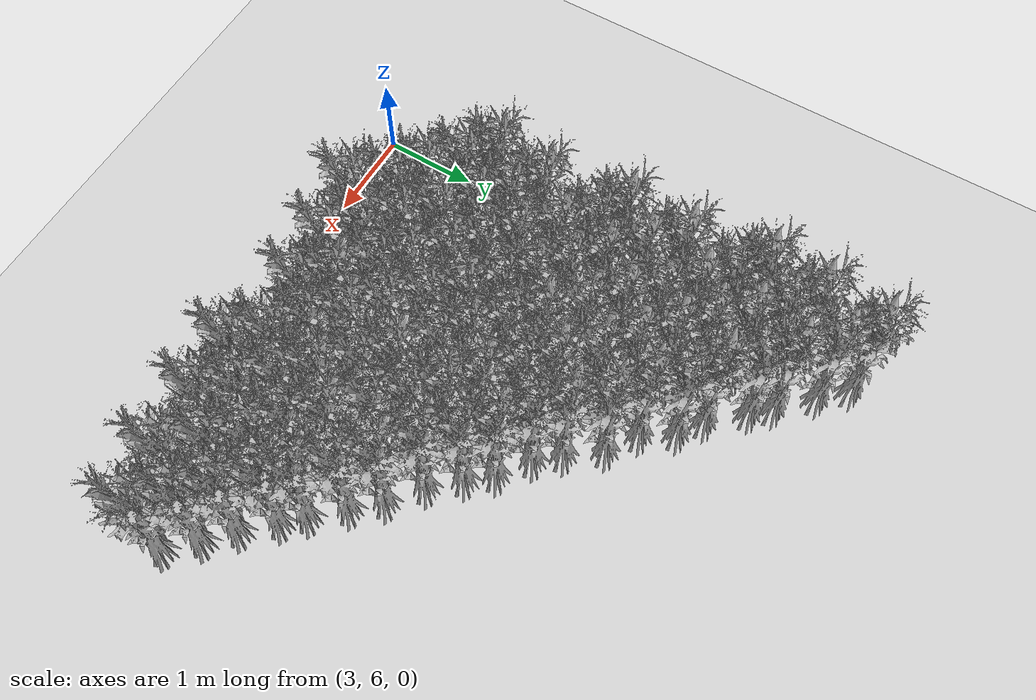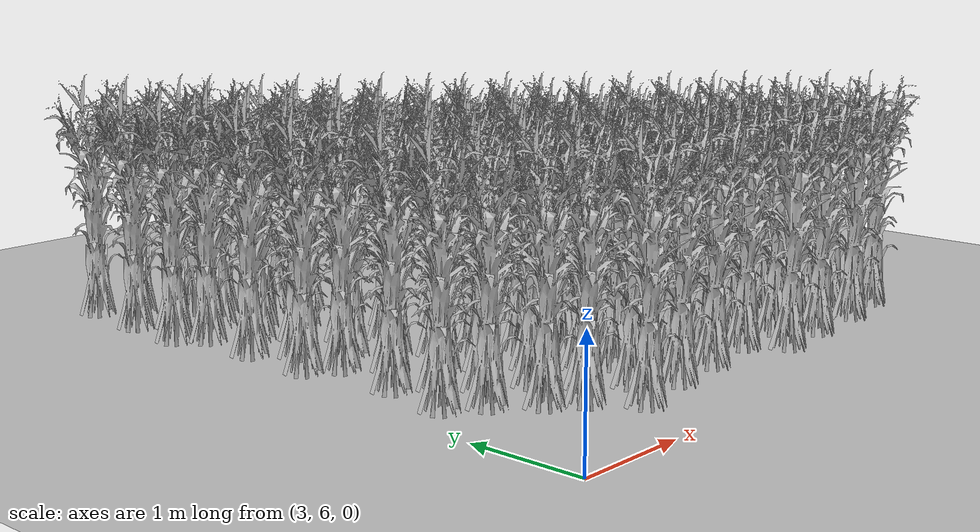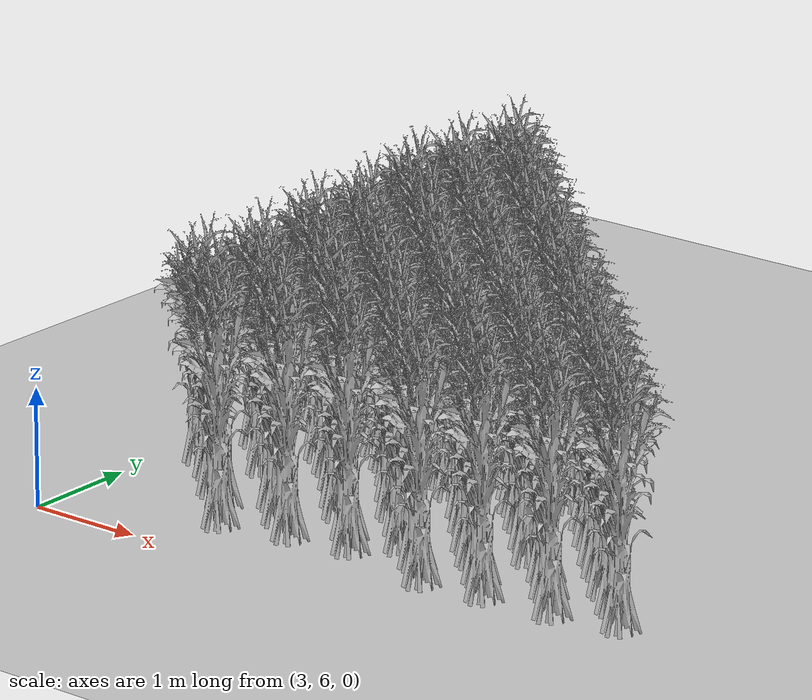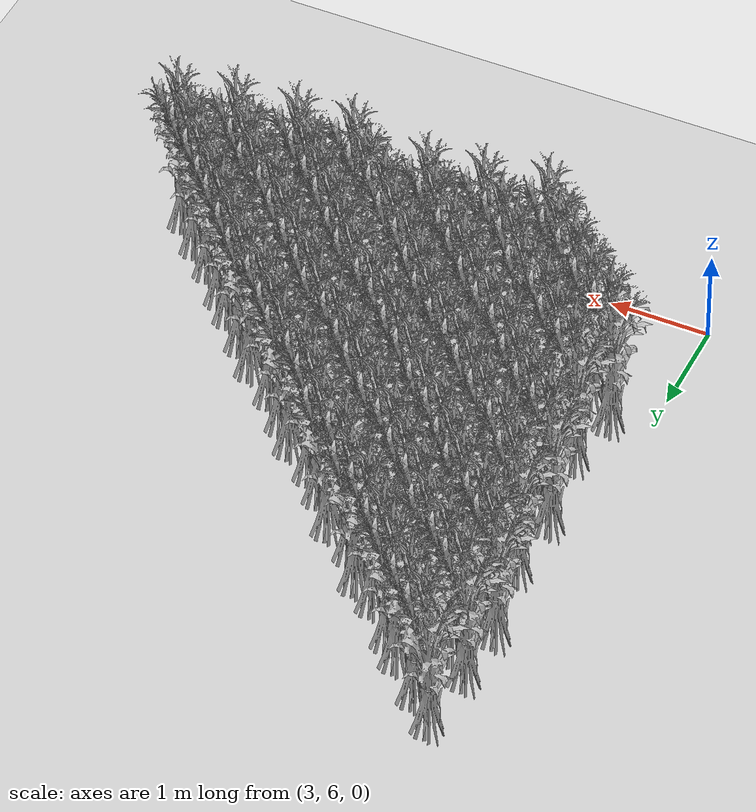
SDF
<sdf version="1.7">
 <world name="farmland_world">
  <model name="ground_plane">
   <static>1</static>
   <link name="link">
    <collision name="collision">
     <geometry><plane><normal>0 0 1</normal><size>40.0 40.0</size></plane></geometry>
     <surface><friction><ode><mu>100</mu><mu2>50</mu2></ode></friction></surface>
    </collision>
    <visual name="visual">
     <cast_shadows>0</cast_shadows>
     <geometry><plane><normal>0 0 1</normal><size>40.0 40.0</size></plane></geometry>
     <material>
      <script><uri>file://media/materials/scripts/gazebo.material</uri><name>Gazebo/Grey</name></script>
     </material>
    </visual>
   </link>
  </model>
  <model name="tree_2_134">
   <static>1</static>
   <link name="link">
    <collision name="collision">
     <geometry><mesh><uri>model://Corn/corn_5p.obj</uri><scale>1 1 1</scale></mesh></geometry>
     <surface><friction><ode><mu>100</mu><mu2>50</mu2></ode></friction></surface>
    </collision>
    <visual name="visual">
     <geometry><mesh><uri>model://Corn/corn_5p.obj</uri><scale>1 1 1</scale></mesh></geometry>
    </visual>
   </link>
   <pose>4.441658821473707 6.540738167003717 0 0 0 0</pose>
  </model>
  <model name="tree_2_135">
   <static>1</static>
   <link name="link">
    <collision name="collision">
     <geometry><mesh><uri>model://Corn/corn_5p.obj</uri><scale>1 1 1</scale></mesh></geometry>
     <surface><friction><ode><mu>100</mu><mu2>50</mu2></ode></friction></surface>
    </collision>
    <visual name="visual">
     <geometry><mesh><uri>model://Corn/corn_5p.obj</uri><scale>1 1 1</scale></mesh></geometry>
    </visual>
   </link>
   <pose>4.17670394490648 6.892740712787918 0 0 0 0</pose>
  </model>
  <model name="tree_2_136">
   <static>1</static>
   <link name="link">
    <collision name="collision">
     <geometry><mesh><uri>model://Corn/corn_5p.obj</uri><scale>1 1 1</scale></mesh></geometry>
     <surface><friction><ode><mu>100</mu><mu2>50</mu2></ode></friction></surface>
    </collision>
    <visual name="visual">
     <geometry><mesh><uri>model://Corn/corn_5p.obj</uri><scale>1 1 1</scale></mesh></geometry>
    </visual>
   </link>
   <pose>3.9305164221705504 7.074115566169022 0 0 0 0</pose>
  </model>
  <model name="tree_2_137">
   <static>1</static>
   <link name="link">
    <collision name="collision">
     <geometry><mesh><uri>model://Corn/corn_5p.obj</uri><scale>1 1 1</scale></mesh></geometry>
     <surface><friction><ode><mu>100</mu><mu2>50</mu2></ode></friction></surface>
    </collision>
    <visual name="visual">
     <geometry><mesh><uri>model://Corn/corn_5p.obj</uri><scale>1 1 1</scale></mesh></geometry>
    </visual>
   </link>
   <pose>3.638600664493365 7.369261112320761 0 0 0 0</pose>
  </model>
  <model name="tree_2_138">
   <static>1</static>
   <link name="link">
    <collision name="collision">
     <geometry><mesh><uri>model://Corn/corn_5p.obj</uri><scale>1 1 1</scale></mesh></geometry>
     <surface><friction><ode><mu>100</mu><mu2>50</mu2></ode></friction></surface>
    </collision>
    <visual name="visual">
     <geometry><mesh><uri>model://Corn/corn_5p.obj</uri><scale>1 1 1</scale></mesh></geometry>
    </visual>
   </link>
   <pose>3.3524202295249457 7.573666697347858 0 0 0 0</pose>
  </model>
  <model name="tree_2_170">
   <static>1</static>
   <link name="link">
    <collision name="collision">
     <geometry><mesh><uri>model://Corn/corn_5p.obj</uri><scale>1 1 1</scale></mesh></geometry>
     <surface><friction><ode><mu>100</mu><mu2>50</mu2></ode></friction></surface>
    </collision>
    <visual name="visual">
     <geometry><mesh><uri>model://Corn/corn_5p.obj</uri><scale>1 1 1</scale></mesh></geometry>
    </visual>
   </link>
   <pose>6.442209550802639 6.571270941902265 0 0 0 0</pose>
  </model>
  <model name="tree_2_171">
   <static>1</static>
   <link name="link">
    <collision name="collision">
     <geometry><mesh><uri>model://Corn/corn_5p.obj</uri><scale>1 1 1</scale></mesh></geometry>
     <surface><friction><ode><mu>100</mu><mu2>50</mu2></ode></friction></surface>
    </collision>
    <visual name="visual">
     <geometry><mesh><uri>model://Corn/corn_5p.obj</uri><scale>1 1 1</scale></mesh></geometry>
    </visual>
   </link>
   <pose>6.180659315132997 6.842884597096304 0 0 0 0</pose>
  </model>
  <model name="tree_2_172">
   <static>1</static>
   <link name="link">
    <collision name="collision">
     <geometry><mesh><uri>model://Corn/corn_5p.obj</uri><scale>1 1 1</scale></mesh></geometry>
     <surface><friction><ode><mu>100</mu><mu2>50</mu2></ode></friction></surface>
    </collision>
    <visual name="visual">
     <geometry><mesh><uri>model://Corn/corn_5p.obj</uri><scale>1 1 1</scale></mesh></geometry>
    </visual>
   </link>
   <pose>5.884256118981908 7.039334077616957 0 0 0 0</pose>
  </model>
  <model name="tree_2_173">
   <static>1</static>
   <link name="link">
    <collision name="collision">
     <geometry><mesh><uri>model://Corn/corn_5p.obj</uri><scale>1 1 1</scale></mesh></geometry>
     <surface><friction><ode><mu>100</mu><mu2>50</mu2></ode></friction></surface>
    </collision>
    <visual name="visual">
     <geometry><mesh><uri>model://Corn/corn_5p.obj</uri><scale>1 1 1</scale></mesh></geometry>
    </visual>
   </link>
   <pose>5.649868060960952 7.318758947629635 0 0 0 0</pose>
  </model>
  <model name="tree_2_174">
   <static>1</static>
   <link name="link">
    <collision name="collision">
     <geometry><mesh><uri>model://Corn/corn_5p.obj</uri><scale>1 1 1</scale></mesh></geometry>
     <surface><friction><ode><mu>100</mu><mu2>50</mu2></ode></friction></surface>
    </collision>
    <visual name="visual">
     <geometry><mesh><uri>model://Corn/corn_5p.obj</uri><scale>1 1 1</scale></mesh></geometry>
    </visual>
   </link>
   <pose>5.361685687739861 7.580199163295369 0 0 0 0</pose>
  </model>
  <model name="tree_2_175">
   <static>1</static>
   <link name="link">
    <collision name="collision">
     <geometry><mesh><uri>model://Corn/corn_5p.obj</uri><scale>1 1 1</scale></mesh></geometry>
     <surface><friction><ode><mu>100</mu><mu2>50</mu2></ode></friction></surface>
    </collision>
    <visual name="visual">
     <geometry><mesh><uri>model://Corn/corn_5p.obj</uri><scale>1 1 1</scale></mesh></geometry>
    </visual>
   </link>
   <pose>5.115755281101087 7.8761193750387966 0 0 0 0</pose>
  </model>
  <model name="tree_2_176">
   <static>1</static>
   <link name="link">
    <collision name="collision">
     <geometry><mesh><uri>model://Corn/corn_5p.obj</uri><scale>1 1 1</scale></mesh></geometry>
     <surface><friction><ode><mu>100</mu><mu2>50</mu2></ode></friction></surface>
    </collision>
    <visual name="visual">
     <geometry><mesh><uri>model://Corn/corn_5p.obj</uri><scale>1 1 1</scale></mesh></geometry>
    </visual>
   </link>
   <pose>4.89480150576301 8.15149799895981 0 0 0 0</pose>
  </model>
  <model name="tree_2_177">
   <static>1</static>
   <link name="link">
    <collision name="collision">
     <geometry><mesh><uri>model://Corn/corn_5p.obj</uri><scale>1 1 1</scale></mesh></geometry>
     <surface><friction><ode><mu>100</mu><mu2>50</mu2></ode></friction></surface>
    </collision>
    <visual name="visual">
     <geometry><mesh><uri>model://Corn/corn_5p.obj</uri><scale>1 1 1</scale></mesh></geometry>
    </visual>
   </link>
   <pose>4.623749663030619 8.407376612846242 0 0 0 0</pose>
  </model>
  <model name="tree_2_178">
   <static>1</static>
   <link name="link">
    <collision name="collision">
     <geometry><mesh><uri>model://Corn/corn_5p.obj</uri><scale>1 1 1</scale></mesh></geometry>
     <surface><friction><ode><mu>100</mu><mu2>50</mu2></ode></friction></surface>
    </collision>
    <visual name="visual">
     <geometry><mesh><uri>model://Corn/corn_5p.obj</uri><scale>1 1 1</scale></mesh></geometry>
    </visual>
   </link>
   <pose>4.3829573903055685 8.59858274475533 0 0 0 0</pose>
  </model>
  <model name="tree_2_179">
   <static>1</static>
   <link name="link">
    <collision name="collision">
     <geometry><mesh><uri>model://Corn/corn_5p.obj</uri><scale>1 1 1</scale></mesh></geometry>
     <surface><friction><ode><mu>100</mu><mu2>50</mu2></ode></friction></surface>
    </collision>
    <visual name="visual">
     <geometry><mesh><uri>model://Corn/corn_5p.obj</uri><scale>1 1 1</scale></mesh></geometry>
    </visual>
   </link>
   <pose>4.152765668809766 8.8483207771094 0 0 0 0</pose>
  </model>
  <model name="tree_2_180">
   <static>1</static>
   <link name="link">
    <collision name="collision">
     <geometry><mesh><uri>model://Corn/corn_5p.obj</uri><scale>1 1 1</scale></mesh></geometry>
     <surface><friction><ode><mu>100</mu><mu2>50</mu2></ode></friction></surface>
    </collision>
    <visual name="visual">
     <geometry><mesh><uri>model://Corn/corn_5p.obj</uri><scale>1 1 1</scale></mesh></geometry>
    </visual>
   </link>
   <pose>3.9041685812488685 9.090522920954122 0 0 0 0</pose>
  </model>
  <model name="tree_2_181">
   <static>1</static>
   <link name="link">
    <collision name="collision">
     <geometry><mesh><uri>model://Corn/corn_5p.obj</uri><scale>1 1 1</scale></mesh></geometry>
     <surface><friction><ode><mu>100</mu><mu2>50</mu2></ode></friction></surface>
    </collision>
    <visual name="visual">
     <geometry><mesh><uri>model://Corn/corn_5p.obj</uri><scale>1 1 1</scale></mesh></geometry>
    </visual>
   </link>
   <pose>3.5871833416954715 9.371010854697236 0 0 0 0</pose>
  </model>
  <model name="tree_2_182">
   <static>1</static>
   <link name="link">
    <collision name="collision">
     <geometry><mesh><uri>model://Corn/corn_5p.obj</uri><scale>1 1 1</scale></mesh></geometry>
     <surface><friction><ode><mu>100</mu><mu2>50</mu2></ode></friction></surface>
    </collision>
    <visual name="visual">
     <geometry><mesh><uri>model://Corn/corn_5p.obj</uri><scale>1 1 1</scale></mesh></geometry>
    </visual>
   </link>
   <pose>3.351969841957537 9.681052960947367 0 0 0 0</pose>
  </model>
  <model name="tree_2_207">
   <static>1</static>
   <link name="link">
    <collision name="collision">
     <geometry><mesh><uri>model://Corn/corn_5p.obj</uri><scale>1 1 1</scale></mesh></geometry>
     <surface><friction><ode><mu>100</mu><mu2>50</mu2></ode></friction></surface>
    </collision>
    <visual name="visual">
     <geometry><mesh><uri>model://Corn/corn_5p.obj</uri><scale>1 1 1</scale></mesh></geometry>
    </visual>
   </link>
   <pose>8.187326834206802 6.787335362092739 0 0 0 0</pose>
  </model>
  <model name="tree_2_208">
   <static>1</static>
   <link name="link">
    <collision name="collision">
     <geometry><mesh><uri>model://Corn/corn_5p.obj</uri><scale>1 1 1</scale></mesh></geometry>
     <surface><friction><ode><mu>100</mu><mu2>50</mu2></ode></friction></surface>
    </collision>
    <visual name="visual">
     <geometry><mesh><uri>model://Corn/corn_5p.obj</uri><scale>1 1 1</scale></mesh></geometry>
    </visual>
   </link>
   <pose>7.923150795688731 7.062847834523212 0 0 0 0</pose>
  </model>
  <model name="tree_2_209">
   <static>1</static>
   <link name="link">
    <collision name="collision">
     <geometry><mesh><uri>model://Corn/corn_5p.obj</uri><scale>1 1 1</scale></mesh></geometry>
     <surface><friction><ode><mu>100</mu><mu2>50</mu2></ode></friction></surface>
    </collision>
    <visual name="visual">
     <geometry><mesh><uri>model://Corn/corn_5p.obj</uri><scale>1 1 1</scale></mesh></geometry>
    </visual>
   </link>
   <pose>7.661906935390697 7.304977329513752 0 0 0 0</pose>
  </model>
  <model name="tree_2_210">
   <static>1</static>
   <link name="link">
    <collision name="collision">
     <geometry><mesh><uri>model://Corn/corn_5p.obj</uri><scale>1 1 1</scale></mesh></geometry>
     <surface><friction><ode><mu>100</mu><mu2>50</mu2></ode></friction></surface>
    </collision>
    <visual name="visual">
     <geometry><mesh><uri>model://Corn/corn_5p.obj</uri><scale>1 1 1</scale></mesh></geometry>
    </visual>
   </link>
   <pose>7.393936059538579 7.59458557301373 0 0 0 0</pose>
  </model>
  <model name="tree_2_211">
   <static>1</static>
   <link name="link">
    <collision name="collision">
     <geometry><mesh><uri>model://Corn/corn_5p.obj</uri><scale>1 1 1</scale></mesh></geometry>
     <surface><friction><ode><mu>100</mu><mu2>50</mu2></ode></friction></surface>
    </collision>
    <visual name="visual">
     <geometry><mesh><uri>model://Corn/corn_5p.obj</uri><scale>1 1 1</scale></mesh></geometry>
    </visual>
   </link>
   <pose>7.206193397694879 7.790139874239556 0 0 0 0</pose>
  </model>
  <model name="tree_2_212">
   <static>1</static>
   <link name="link">
    <collision name="collision">
     <geometry><mesh><uri>model://Corn/corn_5p.obj</uri><scale>1 1 1</scale></mesh></geometry>
     <surface><friction><ode><mu>100</mu><mu2>50</mu2></ode></friction></surface>
    </collision>
    <visual name="visual">
     <geometry><mesh><uri>model://Corn/corn_5p.obj</uri><scale>1 1 1</scale></mesh></geometry>
    </visual>
   </link>
   <pose>6.938086567869645 8.08228123486556 0 0 0 0</pose>
  </model>
  <model name="tree_2_213">
   <static>1</static>
   <link name="link">
    <collision name="collision">
     <geometry><mesh><uri>model://Corn/corn_5p.obj</uri><scale>1 1 1</scale></mesh></geometry>
     <surface><friction><ode><mu>100</mu><mu2>50</mu2></ode></friction></surface>
    </collision>
    <visual name="visual">
     <geometry><mesh><uri>model://Corn/corn_5p.obj</uri><scale>1 1 1</scale></mesh></geometry>
    </visual>
   </link>
   <pose>6.702767428760492 8.345082585118677 0 0 0 0</pose>
  </model>
  <model name="tree_2_214">
   <static>1</static>
   <link name="link">
    <collision name="collision">
     <geometry><mesh><uri>model://Corn/corn_5p.obj</uri><scale>1 1 1</scale></mesh></geometry>
     <surface><friction><ode><mu>100</mu><mu2>50</mu2></ode></friction></surface>
    </collision>
    <visual name="visual">
     <geometry><mesh><uri>model://Corn/corn_5p.obj</uri><scale>1 1 1</scale></mesh></geometry>
    </visual>
   </link>
   <pose>6.376480126332826 8.598687892772034 0 0 0 0</pose>
  </model>
  <model name="tree_2_215">
   <static>1</static>
   <link name="link">
    <collision name="collision">
     <geometry><mesh><uri>model://Corn/corn_5p.obj</uri><scale>1 1 1</scale></mesh></geometry>
     <surface><friction><ode><mu>100</mu><mu2>50</mu2></ode></friction></surface>
    </collision>
    <visual name="visual">
     <geometry><mesh><uri>model://Corn/corn_5p.obj</uri><scale>1 1 1</scale></mesh></geometry>
    </visual>
   </link>
   <pose>6.121659569373516 8.876621966103368 0 0 0 0</pose>
  </model>
  <model name="tree_2_216">
   <static>1</static>
   <link name="link">
    <collision name="collision">
     <geometry><mesh><uri>model://Corn/corn_5p.obj</uri><scale>1 1 1</scale></mesh></geometry>
     <surface><friction><ode><mu>100</mu><mu2>50</mu2></ode></friction></surface>
    </collision>
    <visual name="visual">
     <geometry><mesh><uri>model://Corn/corn_5p.obj</uri><scale>1 1 1</scale></mesh></geometry>
    </visual>
   </link>
   <pose>5.922176956002344 9.112730163992564 0 0 0 0</pose>
  </model>
  <model name="tree_2_217">
   <static>1</static>
   <link name="link">
    <collision name="collision">
     <geometry><mesh><uri>model://Corn/corn_5p.obj</uri><scale>1 1 1</scale></mesh></geometry>
     <surface><friction><ode><mu>100</mu><mu2>50</mu2></ode></friction></surface>
    </collision>
    <visual name="visual">
     <geometry><mesh><uri>model://Corn/corn_5p.obj</uri><scale>1 1 1</scale></mesh></geometry>
    </visual>
   </link>
   <pose>5.608126601507682 9.342059100396785 0 0 0 0</pose>
  </model>
  <model name="tree_2_218">
   <static>1</static>
   <link name="link">
    <collision name="collision">
     <geometry><mesh><uri>model://Corn/corn_5p.obj</uri><scale>1 1 1</scale></mesh></geometry>
     <surface><friction><ode><mu>100</mu><mu2>50</mu2></ode></friction></surface>
    </collision>
    <visual name="visual">
     <geometry><mesh><uri>model://Corn/corn_5p.obj</uri><scale>1 1 1</scale></mesh></geometry>
    </visual>
   </link>
   <pose>5.40087648293924 9.570747824245935 0 0 0 0</pose>
  </model>
  <model name="tree_2_219">
   <static>1</static>
   <link name="link">
    <collision name="collision">
     <geometry><mesh><uri>model://Corn/corn_5p.obj</uri><scale>1 1 1</scale></mesh></geometry>
     <surface><friction><ode><mu>100</mu><mu2>50</mu2></ode></friction></surface>
    </collision>
    <visual name="visual">
     <geometry><mesh><uri>model://Corn/corn_5p.obj</uri><scale>1 1 1</scale></mesh></geometry>
    </visual>
   </link>
   <pose>5.1523648709915575 9.90199127695703 0 0 0 0</pose>
  </model>
  <model name="tree_2_220">
   <static>1</static>
   <link name="link">
    <collision name="collision">
     <geometry><mesh><uri>model://Corn/corn_5p.obj</uri><scale>1 1 1</scale></mesh></geometry>
     <surface><friction><ode><mu>100</mu><mu2>50</mu2></ode></friction></surface>
    </collision>
    <visual name="visual">
     <geometry><mesh><uri>model://Corn/corn_5p.obj</uri><scale>1 1 1</scale></mesh></geometry>
    </visual>
   </link>
   <pose>4.832839077731749 10.106087761078665 0 0 0 0</pose>
  </model>
  <model name="tree_2_221">
   <static>1</static>
   <link name="link">
    <collision name="collision">
     <geometry><mesh><uri>model://Corn/corn_5p.obj</uri><scale>1 1 1</scale></mesh></geometry>
     <surface><friction><ode><mu>100</mu><mu2>50</mu2></ode></friction></surface>
    </collision>
    <visual name="visual">
     <geometry><mesh><uri>model://Corn/corn_5p.obj</uri><scale>1 1 1</scale></mesh></geometry>
    </visual>
   </link>
   <pose>4.629624226291306 10.418422449100603 0 0 0 0</pose>
  </model>
  <model name="tree_2_222">
   <static>1</static>
   <link name="link">
    <collision name="collision">
     <geometry><mesh><uri>model://Corn/corn_5p.obj</uri><scale>1 1 1</scale></mesh></geometry>
     <surface><friction><ode><mu>100</mu><mu2>50</mu2></ode></friction></surface>
    </collision>
    <visual name="visual">
     <geometry><mesh><uri>model://Corn/corn_5p.obj</uri><scale>1 1 1</scale></mesh></geometry>
    </visual>
   </link>
   <pose>4.3735772193418985 10.592097559874858 0 0 0 0</pose>
  </model>
  <model name="tree_2_223">
   <static>1</static>
   <link name="link">
    <collision name="collision">
     <geometry><mesh><uri>model://Corn/corn_5p.obj</uri><scale>1 1 1</scale></mesh></geometry>
     <surface><friction><ode><mu>100</mu><mu2>50</mu2></ode></friction></surface>
    </collision>
    <visual name="visual">
     <geometry><mesh><uri>model://Corn/corn_5p.obj</uri><scale>1 1 1</scale></mesh></geometry>
    </visual>
   </link>
   <pose>4.066540443074735 10.930607450606153 0 0 0 0</pose>
  </model>
  <model name="tree_2_224">
   <static>1</static>
   <link name="link">
    <collision name="collision">
     <geometry><mesh><uri>model://Corn/corn_5p.obj</uri><scale>1 1 1</scale></mesh></geometry>
     <surface><friction><ode><mu>100</mu><mu2>50</mu2></ode></friction></surface>
    </collision>
    <visual name="visual">
     <geometry><mesh><uri>model://Corn/corn_5p.obj</uri><scale>1 1 1</scale></mesh></geometry>
    </visual>
   </link>
   <pose>3.894151205332556 11.120452773485466 0 0 0 0</pose>
  </model>
  <model name="tree_2_225">
   <static>1</static>
   <link name="link">
    <collision name="collision">
     <geometry><mesh><uri>model://Corn/corn_5p.obj</uri><scale>1 1 1</scale></mesh></geometry>
     <surface><friction><ode><mu>100</mu><mu2>50</mu2></ode></friction></surface>
    </collision>
    <visual name="visual">
     <geometry><mesh><uri>model://Corn/corn_5p.obj</uri><scale>1 1 1</scale></mesh></geometry>
    </visual>
   </link>
   <pose>3.565963246835141 11.444676768163154 0 0 0 0</pose>
  </model>
  <model name="tree_2_226">
   <static>1</static>
   <link name="link">
    <collision name="collision">
     <geometry><mesh><uri>model://Corn/corn_5p.obj</uri><scale>1 1 1</scale></mesh></geometry>
     <surface><friction><ode><mu>100</mu><mu2>50</mu2></ode></friction></surface>
    </collision>
    <visual name="visual">
     <geometry><mesh><uri>model://Corn/corn_5p.obj</uri><scale>1 1 1</scale></mesh></geometry>
    </visual>
   </link>
   <pose>3.307749381899059 11.70257336095211 0 0 0 0</pose>
  </model>
  <model name="tree_2_413">
   <static>1</static>
   <link name="link">
    <collision name="collision">
     <geometry><mesh><uri>model://Corn/corn_5p.obj</uri><scale>1 1 1</scale></mesh></geometry>
     <surface><friction><ode><mu>100</mu><mu2>50</mu2></ode></friction></surface>
    </collision>
    <visual name="visual">
     <geometry><mesh><uri>model://Corn/corn_5p.obj</uri><scale>1 1 1</scale></mesh></geometry>
    </visual>
   </link>
   <pose>5.040641710675058 6.675424133841271 0 0 0 0</pose>
  </model>
  <model name="tree_2_414">
   <static>1</static>
   <link name="link">
    <collision name="collision">
     <geometry><mesh><uri>model://Corn/corn_5p.obj</uri><scale>1 1 1</scale></mesh></geometry>
     <surface><friction><ode><mu>100</mu><mu2>50</mu2></ode></friction></surface>
    </collision>
    <visual name="visual">
     <geometry><mesh><uri>model://Corn/corn_5p.obj</uri><scale>1 1 1</scale></mesh></geometry>
    </visual>
   </link>
   <pose>4.752597015456585 6.904130073118739 0 0 0 0</pose>
  </model>
  <model name="tree_2_415">
   <static>1</static>
   <link name="link">
    <collision name="collision">
     <geometry><mesh><uri>model://Corn/corn_5p.obj</uri><scale>1 1 1</scale></mesh></geometry>
     <surface><friction><ode><mu>100</mu><mu2>50</mu2></ode></friction></surface>
    </collision>
    <visual name="visual">
     <geometry><mesh><uri>model://Corn/corn_5p.obj</uri><scale>1 1 1</scale></mesh></geometry>
    </visual>
   </link>
   <pose>4.492529118458537 7.15574214383356 0 0 0 0</pose>
  </model>
  <model name="tree_2_416">
   <static>1</static>
   <link name="link">
    <collision name="collision">
     <geometry><mesh><uri>model://Corn/corn_5p.obj</uri><scale>1 1 1</scale></mesh></geometry>
     <surface><friction><ode><mu>100</mu><mu2>50</mu2></ode></friction></surface>
    </collision>
    <visual name="visual">
     <geometry><mesh><uri>model://Corn/corn_5p.obj</uri><scale>1 1 1</scale></mesh></geometry>
    </visual>
   </link>
   <pose>4.258097435607617 7.4743157151858455 0 0 0 0</pose>
  </model>
  <model name="tree_2_417">
   <static>1</static>
   <link name="link">
    <collision name="collision">
     <geometry><mesh><uri>model://Corn/corn_5p.obj</uri><scale>1 1 1</scale></mesh></geometry>
     <surface><friction><ode><mu>100</mu><mu2>50</mu2></ode></friction></surface>
    </collision>
    <visual name="visual">
     <geometry><mesh><uri>model://Corn/corn_5p.obj</uri><scale>1 1 1</scale></mesh></geometry>
    </visual>
   </link>
   <pose>3.930135495852828 7.688830460289298 0 0 0 0</pose>
  </model>
  <model name="tree_2_418">
   <static>1</static>
   <link name="link">
    <collision name="collision">
     <geometry><mesh><uri>model://Corn/corn_5p.obj</uri><scale>1 1 1</scale></mesh></geometry>
     <surface><friction><ode><mu>100</mu><mu2>50</mu2></ode></friction></surface>
    </collision>
    <visual name="visual">
     <geometry><mesh><uri>model://Corn/corn_5p.obj</uri><scale>1 1 1</scale></mesh></geometry>
    </visual>
   </link>
   <pose>3.7214854047242762 7.948849987795187 0 0 0 0</pose>
  </model>
  <model name="tree_2_419">
   <static>1</static>
   <link name="link">
    <collision name="collision">
     <geometry><mesh><uri>model://Corn/corn_5p.obj</uri><scale>1 1 1</scale></mesh></geometry>
     <surface><friction><ode><mu>100</mu><mu2>50</mu2></ode></friction></surface>
    </collision>
    <visual name="visual">
     <geometry><mesh><uri>model://Corn/corn_5p.obj</uri><scale>1 1 1</scale></mesh></geometry>
    </visual>
   </link>
   <pose>3.4532912531368023 8.164315678776795 0 0 0 0</pose>
  </model>
  <model name="tree_2_452">
   <static>1</static>
   <link name="link">
    <collision name="collision">
     <geometry><mesh><uri>model://Corn/corn_5p.obj</uri><scale>1 1 1</scale></mesh></geometry>
     <surface><friction><ode><mu>100</mu><mu2>50</mu2></ode></friction></surface>
    </collision>
    <visual name="visual">
     <geometry><mesh><uri>model://Corn/corn_5p.obj</uri><scale>1 1 1</scale></mesh></geometry>
    </visual>
   </link>
   <pose>5.592794499815273 6.749579076188044 0 0 0 0</pose>
  </model>
  <model name="tree_2_453">
   <static>1</static>
   <link name="link">
    <collision name="collision">
     <geometry><mesh><uri>model://Corn/corn_5p.obj</uri><scale>1 1 1</scale></mesh></geometry>
     <surface><friction><ode><mu>100</mu><mu2>50</mu2></ode></friction></surface>
    </collision>
    <visual name="visual">
     <geometry><mesh><uri>model://Corn/corn_5p.obj</uri><scale>1 1 1</scale></mesh></geometry>
    </visual>
   </link>
   <pose>5.3836485319145115 6.993144944400974 0 0 0 0</pose>
  </model>
  <model name="tree_2_454">
   <static>1</static>
   <link name="link">
    <collision name="collision">
     <geometry><mesh><uri>model://Corn/corn_5p.obj</uri><scale>1 1 1</scale></mesh></geometry>
     <surface><friction><ode><mu>100</mu><mu2>50</mu2></ode></friction></surface>
    </collision>
    <visual name="visual">
     <geometry><mesh><uri>model://Corn/corn_5p.obj</uri><scale>1 1 1</scale></mesh></geometry>
    </visual>
   </link>
   <pose>5.049400917638983 7.29489114350931 0 0 0 0</pose>
  </model>
  <model name="tree_2_455">
   <static>1</static>
   <link name="link">
    <collision name="collision">
     <geometry><mesh><uri>model://Corn/corn_5p.obj</uri><scale>1 1 1</scale></mesh></geometry>
     <surface><friction><ode><mu>100</mu><mu2>50</mu2></ode></friction></surface>
    </collision>
    <visual name="visual">
     <geometry><mesh><uri>model://Corn/corn_5p.obj</uri><scale>1 1 1</scale></mesh></geometry>
    </visual>
   </link>
   <pose>4.863433973302631 7.490310337529758 0 0 0 0</pose>
  </model>
  <model name="tree_2_456">
   <static>1</static>
   <link name="link">
    <collision name="collision">
     <geometry><mesh><uri>model://Corn/corn_5p.obj</uri><scale>1 1 1</scale></mesh></geometry>
     <surface><friction><ode><mu>100</mu><mu2>50</mu2></ode></friction></surface>
    </collision>
    <visual name="visual">
     <geometry><mesh><uri>model://Corn/corn_5p.obj</uri><scale>1 1 1</scale></mesh></geometry>
    </visual>
   </link>
   <pose>4.600457296530367 7.787894644055285 0 0 0 0</pose>
  </model>
  <model name="tree_2_457">
   <static>1</static>
   <link name="link">
    <collision name="collision">
     <geometry><mesh><uri>model://Corn/corn_5p.obj</uri><scale>1 1 1</scale></mesh></geometry>
     <surface><friction><ode><mu>100</mu><mu2>50</mu2></ode></friction></surface>
    </collision>
    <visual name="visual">
     <geometry><mesh><uri>model://Corn/corn_5p.obj</uri><scale>1 1 1</scale></mesh></geometry>
    </visual>
   </link>
   <pose>4.331226025909942 8.03831750056417 0 0 0 0</pose>
  </model>
  <model name="tree_2_458">
   <static>1</static>
   <link name="link">
    <collision name="collision">
     <geometry><mesh><uri>model://Corn/corn_5p.obj</uri><scale>1 1 1</scale></mesh></geometry>
     <surface><friction><ode><mu>100</mu><mu2>50</mu2></ode></friction></surface>
    </collision>
    <visual name="visual">
     <geometry><mesh><uri>model://Corn/corn_5p.obj</uri><scale>1 1 1</scale></mesh></geometry>
    </visual>
   </link>
   <pose>4.075824251759122 8.242238447485851 0 0 0 0</pose>
  </model>
  <model name="tree_2_459">
   <static>1</static>
   <link name="link">
    <collision name="collision">
     <geometry><mesh><uri>model://Corn/corn_5p.obj</uri><scale>1 1 1</scale></mesh></geometry>
     <surface><friction><ode><mu>100</mu><mu2>50</mu2></ode></friction></surface>
    </collision>
    <visual name="visual">
     <geometry><mesh><uri>model://Corn/corn_5p.obj</uri><scale>1 1 1</scale></mesh></geometry>
    </visual>
   </link>
   <pose>3.827898893283846 8.555635165464524 0 0 0 0</pose>
  </model>
  <model name="tree_2_460">
   <static>1</static>
   <link name="link">
    <collision name="collision">
     <geometry><mesh><uri>model://Corn/corn_5p.obj</uri><scale>1 1 1</scale></mesh></geometry>
     <surface><friction><ode><mu>100</mu><mu2>50</mu2></ode></friction></surface>
    </collision>
    <visual name="visual">
     <geometry><mesh><uri>model://Corn/corn_5p.obj</uri><scale>1 1 1</scale></mesh></geometry>
    </visual>
   </link>
   <pose>3.568516849263763 8.833972914810408 0 0 0 0</pose>
  </model>
  <model name="tree_2_461">
   <static>1</static>
   <link name="link">
    <collision name="collision">
     <geometry><mesh><uri>model://Corn/corn_5p.obj</uri><scale>1 1 1</scale></mesh></geometry>
     <surface><friction><ode><mu>100</mu><mu2>50</mu2></ode></friction></surface>
    </collision>
    <visual name="visual">
     <geometry><mesh><uri>model://Corn/corn_5p.obj</uri><scale>1 1 1</scale></mesh></geometry>
    </visual>
   </link>
   <pose>3.328509506721916 9.006193576496369 0 0 0 0</pose>
  </model>
  <model name="tree_2_489">
   <static>1</static>
   <link name="link">
    <collision name="collision">
     <geometry><mesh><uri>model://Corn/corn_5p.obj</uri><scale>1 1 1</scale></mesh></geometry>
     <surface><friction><ode><mu>100</mu><mu2>50</mu2></ode></friction></surface>
    </collision>
    <visual name="visual">
     <geometry><mesh><uri>model://Corn/corn_5p.obj</uri><scale>1 1 1</scale></mesh></geometry>
    </visual>
   </link>
   <pose>7.000974790565598 6.633268578152058 0 0 0 0</pose>
  </model>
  <model name="tree_2_490">
   <static>1</static>
   <link name="link">
    <collision name="collision">
     <geometry><mesh><uri>model://Corn/corn_5p.obj</uri><scale>1 1 1</scale></mesh></geometry>
     <surface><friction><ode><mu>100</mu><mu2>50</mu2></ode></friction></surface>
    </collision>
    <visual name="visual">
     <geometry><mesh><uri>model://Corn/corn_5p.obj</uri><scale>1 1 1</scale></mesh></geometry>
    </visual>
   </link>
   <pose>6.755519334123803 6.908754170192642 0 0 0 0</pose>
  </model>
  <model name="tree_2_491">
   <static>1</static>
   <link name="link">
    <collision name="collision">
     <geometry><mesh><uri>model://Corn/corn_5p.obj</uri><scale>1 1 1</scale></mesh></geometry>
     <surface><friction><ode><mu>100</mu><mu2>50</mu2></ode></friction></surface>
    </collision>
    <visual name="visual">
     <geometry><mesh><uri>model://Corn/corn_5p.obj</uri><scale>1 1 1</scale></mesh></geometry>
    </visual>
   </link>
   <pose>6.489977586071089 7.166674389013232 0 0 0 0</pose>
  </model>
  <model name="tree_2_492">
   <static>1</static>
   <link name="link">
    <collision name="collision">
     <geometry><mesh><uri>model://Corn/corn_5p.obj</uri><scale>1 1 1</scale></mesh></geometry>
     <surface><friction><ode><mu>100</mu><mu2>50</mu2></ode></friction></surface>
    </collision>
    <visual name="visual">
     <geometry><mesh><uri>model://Corn/corn_5p.obj</uri><scale>1 1 1</scale></mesh></geometry>
    </visual>
   </link>
   <pose>6.266759678600198 7.395238652764317 0 0 0 0</pose>
  </model>
  <model name="tree_2_493">
   <static>1</static>
   <link name="link">
    <collision name="collision">
     <geometry><mesh><uri>model://Corn/corn_5p.obj</uri><scale>1 1 1</scale></mesh></geometry>
     <surface><friction><ode><mu>100</mu><mu2>50</mu2></ode></friction></surface>
    </collision>
    <visual name="visual">
     <geometry><mesh><uri>model://Corn/corn_5p.obj</uri><scale>1 1 1</scale></mesh></geometry>
    </visual>
   </link>
   <pose>5.994317471336902 7.708234104026206 0 0 0 0</pose>
  </model>
  <model name="tree_2_494">
   <static>1</static>
   <link name="link">
    <collision name="collision">
     <geometry><mesh><uri>model://Corn/corn_5p.obj</uri><scale>1 1 1</scale></mesh></geometry>
     <surface><friction><ode><mu>100</mu><mu2>50</mu2></ode></friction></surface>
    </collision>
    <visual name="visual">
     <geometry><mesh><uri>model://Corn/corn_5p.obj</uri><scale>1 1 1</scale></mesh></geometry>
    </visual>
   </link>
   <pose>5.782612195757998 7.9436024872575635 0 0 0 0</pose>
  </model>
  <model name="tree_2_495">
   <static>1</static>
   <link name="link">
    <collision name="collision">
     <geometry><mesh><uri>model://Corn/corn_5p.obj</uri><scale>1 1 1</scale></mesh></geometry>
     <surface><friction><ode><mu>100</mu><mu2>50</mu2></ode></friction></surface>
    </collision>
    <visual name="visual">
     <geometry><mesh><uri>model://Corn/corn_5p.obj</uri><scale>1 1 1</scale></mesh></geometry>
    </visual>
   </link>
   <pose>5.447002368342038 8.21653485500228 0 0 0 0</pose>
  </model>
  <model name="tree_2_496">
   <static>1</static>
   <link name="link">
    <collision name="collision">
     <geometry><mesh><uri>model://Corn/corn_5p.obj</uri><scale>1 1 1</scale></mesh></geometry>
     <surface><friction><ode><mu>100</mu><mu2>50</mu2></ode></friction></surface>
    </collision>
    <visual name="visual">
     <geometry><mesh><uri>model://Corn/corn_5p.obj</uri><scale>1 1 1</scale></mesh></geometry>
    </visual>
   </link>
   <pose>5.223674699516493 8.394246945697986 0 0 0 0</pose>
  </model>
  <model name="tree_2_497">
   <static>1</static>
   <link name="link">
    <collision name="collision">
     <geometry><mesh><uri>model://Corn/corn_5p.obj</uri><scale>1 1 1</scale></mesh></geometry>
     <surface><friction><ode><mu>100</mu><mu2>50</mu2></ode></friction></surface>
    </collision>
    <visual name="visual">
     <geometry><mesh><uri>model://Corn/corn_5p.obj</uri><scale>1 1 1</scale></mesh></geometry>
    </visual>
   </link>
   <pose>4.963450397800057 8.67171754612849 0 0 0 0</pose>
  </model>
  <model name="tree_2_498">
   <static>1</static>
   <link name="link">
    <collision name="collision">
     <geometry><mesh><uri>model://Corn/corn_5p.obj</uri><scale>1 1 1</scale></mesh></geometry>
     <surface><friction><ode><mu>100</mu><mu2>50</mu2></ode></friction></surface>
    </collision>
    <visual name="visual">
     <geometry><mesh><uri>model://Corn/corn_5p.obj</uri><scale>1 1 1</scale></mesh></geometry>
    </visual>
   </link>
   <pose>4.734926978943786 8.897571638893986 0 0 0 0</pose>
  </model>
  <model name="tree_2_499">
   <static>1</static>
   <link name="link">
    <collision name="collision">
     <geometry><mesh><uri>model://Corn/corn_5p.obj</uri><scale>1 1 1</scale></mesh></geometry>
     <surface><friction><ode><mu>100</mu><mu2>50</mu2></ode></friction></surface>
    </collision>
    <visual name="visual">
     <geometry><mesh><uri>model://Corn/corn_5p.obj</uri><scale>1 1 1</scale></mesh></geometry>
    </visual>
   </link>
   <pose>4.443445816593355 9.23146366120892 0 0 0 0</pose>
  </model>
  <model name="tree_2_500">
   <static>1</static>
   <link name="link">
    <collision name="collision">
     <geometry><mesh><uri>model://Corn/corn_5p.obj</uri><scale>1 1 1</scale></mesh></geometry>
     <surface><friction><ode><mu>100</mu><mu2>50</mu2></ode></friction></surface>
    </collision>
    <visual name="visual">
     <geometry><mesh><uri>model://Corn/corn_5p.obj</uri><scale>1 1 1</scale></mesh></geometry>
    </visual>
   </link>
   <pose>4.175723538477567 9.464297962372953 0 0 0 0</pose>
  </model>
  <model name="tree_2_501">
   <static>1</static>
   <link name="link">
    <collision name="collision">
     <geometry><mesh><uri>model://Corn/corn_5p.obj</uri><scale>1 1 1</scale></mesh></geometry>
     <surface><friction><ode><mu>100</mu><mu2>50</mu2></ode></friction></surface>
    </collision>
    <visual name="visual">
     <geometry><mesh><uri>model://Corn/corn_5p.obj</uri><scale>1 1 1</scale></mesh></geometry>
    </visual>
   </link>
   <pose>3.9300251349375523 9.763694549672703 0 0 0 0</pose>
  </model>
  <model name="tree_2_502">
   <static>1</static>
   <link name="link">
    <collision name="collision">
     <geometry><mesh><uri>model://Corn/corn_5p.obj</uri><scale>1 1 1</scale></mesh></geometry>
     <surface><friction><ode><mu>100</mu><mu2>50</mu2></ode></friction></surface>
    </collision>
    <visual name="visual">
     <geometry><mesh><uri>model://Corn/corn_5p.obj</uri><scale>1 1 1</scale></mesh></geometry>
    </visual>
   </link>
   <pose>3.716912592094978 10.017195035762084 0 0 0 0</pose>
  </model>
  <model name="tree_2_503">
   <static>1</static>
   <link name="link">
    <collision name="collision">
     <geometry><mesh><uri>model://Corn/corn_5p.obj</uri><scale>1 1 1</scale></mesh></geometry>
     <surface><friction><ode><mu>100</mu><mu2>50</mu2></ode></friction></surface>
    </collision>
    <visual name="visual">
     <geometry><mesh><uri>model://Corn/corn_5p.obj</uri><scale>1 1 1</scale></mesh></geometry>
    </visual>
   </link>
   <pose>3.397815303229831 10.267323656538956 0 0 0 0</pose>
  </model>
  <model name="tree_2_504">
   <static>1</static>
   <link name="link">
    <collision name="collision">
     <geometry><mesh><uri>model://Corn/corn_5p.obj</uri><scale>1 1 1</scale></mesh></geometry>
     <surface><friction><ode><mu>100</mu><mu2>50</mu2></ode></friction></surface>
    </collision>
    <visual name="visual">
     <geometry><mesh><uri>model://Corn/corn_5p.obj</uri><scale>1 1 1</scale></mesh></geometry>
    </visual>
   </link>
   <pose>3.2095895437873576 10.477807473760567 0 0 0 0</pose>
  </model>
  <model name="tree_2_528">
   <static>1</static>
   <link name="link">
    <collision name="collision">
     <geometry><mesh><uri>model://Corn/corn_5p.obj</uri><scale>1 1 1</scale></mesh></geometry>
     <surface><friction><ode><mu>100</mu><mu2>50</mu2></ode></friction></surface>
    </collision>
    <visual name="visual">
     <geometry><mesh><uri>model://Corn/corn_5p.obj</uri><scale>1 1 1</scale></mesh></geometry>
    </visual>
   </link>
   <pose>7.626041784755584 6.6724723640591135 0 0 0 0</pose>
  </model>
  <model name="tree_2_529">
   <static>1</static>
   <link name="link">
    <collision name="collision">
     <geometry><mesh><uri>model://Corn/corn_5p.obj</uri><scale>1 1 1</scale></mesh></geometry>
     <surface><friction><ode><mu>100</mu><mu2>50</mu2></ode></friction></surface>
    </collision>
    <visual name="visual">
     <geometry><mesh><uri>model://Corn/corn_5p.obj</uri><scale>1 1 1</scale></mesh></geometry>
    </visual>
   </link>
   <pose>7.343348581641512 7.001582206852388 0 0 0 0</pose>
  </model>
  <model name="tree_2_530">
   <static>1</static>
   <link name="link">
    <collision name="collision">
     <geometry><mesh><uri>model://Corn/corn_5p.obj</uri><scale>1 1 1</scale></mesh></geometry>
     <surface><friction><ode><mu>100</mu><mu2>50</mu2></ode></friction></surface>
    </collision>
    <visual name="visual">
     <geometry><mesh><uri>model://Corn/corn_5p.obj</uri><scale>1 1 1</scale></mesh></geometry>
    </visual>
   </link>
   <pose>7.1141889710690265 7.263974697285962 0 0 0 0</pose>
  </model>
  <model name="tree_2_531">
   <static>1</static>
   <link name="link">
    <collision name="collision">
     <geometry><mesh><uri>model://Corn/corn_5p.obj</uri><scale>1 1 1</scale></mesh></geometry>
     <surface><friction><ode><mu>100</mu><mu2>50</mu2></ode></friction></surface>
    </collision>
    <visual name="visual">
     <geometry><mesh><uri>model://Corn/corn_5p.obj</uri><scale>1 1 1</scale></mesh></geometry>
    </visual>
   </link>
   <pose>6.814280298228779 7.463229142682961 0 0 0 0</pose>
  </model>
  <model name="tree_2_532">
   <static>1</static>
   <link name="link">
    <collision name="collision">
     <geometry><mesh><uri>model://Corn/corn_5p.obj</uri><scale>1 1 1</scale></mesh></geometry>
     <surface><friction><ode><mu>100</mu><mu2>50</mu2></ode></friction></surface>
    </collision>
    <visual name="visual">
     <geometry><mesh><uri>model://Corn/corn_5p.obj</uri><scale>1 1 1</scale></mesh></geometry>
    </visual>
   </link>
   <pose>6.584754307449409 7.719881721785895 0 0 0 0</pose>
  </model>
  <model name="tree_2_533">
   <static>1</static>
   <link name="link">
    <collision name="collision">
     <geometry><mesh><uri>model://Corn/corn_5p.obj</uri><scale>1 1 1</scale></mesh></geometry>
     <surface><friction><ode><mu>100</mu><mu2>50</mu2></ode></friction></surface>
    </collision>
    <visual name="visual">
     <geometry><mesh><uri>model://Corn/corn_5p.obj</uri><scale>1 1 1</scale></mesh></geometry>
    </visual>
   </link>
   <pose>6.291486998527773 8.028803360376646 0 0 0 0</pose>
  </model>
  <model name="tree_2_534">
   <static>1</static>
   <link name="link">
    <collision name="collision">
     <geometry><mesh><uri>model://Corn/corn_5p.obj</uri><scale>1 1 1</scale></mesh></geometry>
     <surface><friction><ode><mu>100</mu><mu2>50</mu2></ode></friction></surface>
    </collision>
    <visual name="visual">
     <geometry><mesh><uri>model://Corn/corn_5p.obj</uri><scale>1 1 1</scale></mesh></geometry>
    </visual>
   </link>
   <pose>6.040505394218987 8.281206424603544 0 0 0 0</pose>
  </model>
  <model name="tree_2_535">
   <static>1</static>
   <link name="link">
    <collision name="collision">
     <geometry><mesh><uri>model://Corn/corn_5p.obj</uri><scale>1 1 1</scale></mesh></geometry>
     <surface><friction><ode><mu>100</mu><mu2>50</mu2></ode></friction></surface>
    </collision>
    <visual name="visual">
     <geometry><mesh><uri>model://Corn/corn_5p.obj</uri><scale>1 1 1</scale></mesh></geometry>
    </visual>
   </link>
   <pose>5.839402920147948 8.52316666157065 0 0 0 0</pose>
  </model>
  <model name="tree_2_536">
   <static>1</static>
   <link name="link">
    <collision name="collision">
     <geometry><mesh><uri>model://Corn/corn_5p.obj</uri><scale>1 1 1</scale></mesh></geometry>
     <surface><friction><ode><mu>100</mu><mu2>50</mu2></ode></friction></surface>
    </collision>
    <visual name="visual">
     <geometry><mesh><uri>model://Corn/corn_5p.obj</uri><scale>1 1 1</scale></mesh></geometry>
    </visual>
   </link>
   <pose>5.536808141160268 8.742532962743113 0 0 0 0</pose>
  </model>
  <model name="tree_2_537">
   <static>1</static>
   <link name="link">
    <collision name="collision">
     <geometry><mesh><uri>model://Corn/corn_5p.obj</uri><scale>1 1 1</scale></mesh></geometry>
     <surface><friction><ode><mu>100</mu><mu2>50</mu2></ode></friction></surface>
    </collision>
    <visual name="visual">
     <geometry><mesh><uri>model://Corn/corn_5p.obj</uri><scale>1 1 1</scale></mesh></geometry>
    </visual>
   </link>
   <pose>5.27680987361016 9.014273965337773 0 0 0 0</pose>
  </model>
  <model name="tree_2_538">
   <static>1</static>
   <link name="link">
    <collision name="collision">
     <geometry><mesh><uri>model://Corn/corn_5p.obj</uri><scale>1 1 1</scale></mesh></geometry>
     <surface><friction><ode><mu>100</mu><mu2>50</mu2></ode></friction></surface>
    </collision>
    <visual name="visual">
     <geometry><mesh><uri>model://Corn/corn_5p.obj</uri><scale>1 1 1</scale></mesh></geometry>
    </visual>
   </link>
   <pose>5.067554503279695 9.242553778892328 0 0 0 0</pose>
  </model>
  <model name="tree_2_539">
   <static>1</static>
   <link name="link">
    <collision name="collision">
     <geometry><mesh><uri>model://Corn/corn_5p.obj</uri><scale>1 1 1</scale></mesh></geometry>
     <surface><friction><ode><mu>100</mu><mu2>50</mu2></ode></friction></surface>
    </collision>
    <visual name="visual">
     <geometry><mesh><uri>model://Corn/corn_5p.obj</uri><scale>1 1 1</scale></mesh></geometry>
    </visual>
   </link>
   <pose>4.774639417886896 9.554607085519356 0 0 0 0</pose>
  </model>
  <model name="tree_2_540">
   <static>1</static>
   <link name="link">
    <collision name="collision">
     <geometry><mesh><uri>model://Corn/corn_5p.obj</uri><scale>1 1 1</scale></mesh></geometry>
     <surface><friction><ode><mu>100</mu><mu2>50</mu2></ode></friction></surface>
    </collision>
    <visual name="visual">
     <geometry><mesh><uri>model://Corn/corn_5p.obj</uri><scale>1 1 1</scale></mesh></geometry>
    </visual>
   </link>
   <pose>4.502118764595067 9.777379612442202 0 0 0 0</pose>
  </model>
  <model name="tree_2_541">
   <static>1</static>
   <link name="link">
    <collision name="collision">
     <geometry><mesh><uri>model://Corn/corn_5p.obj</uri><scale>1 1 1</scale></mesh></geometry>
     <surface><friction><ode><mu>100</mu><mu2>50</mu2></ode></friction></surface>
    </collision>
    <visual name="visual">
     <geometry><mesh><uri>model://Corn/corn_5p.obj</uri><scale>1 1 1</scale></mesh></geometry>
    </visual>
   </link>
   <pose>4.252803519097981 10.05532517543531 0 0 0 0</pose>
  </model>
  <model name="tree_2_542">
   <static>1</static>
   <link name="link">
    <collision name="collision">
     <geometry><mesh><uri>model://Corn/corn_5p.obj</uri><scale>1 1 1</scale></mesh></geometry>
     <surface><friction><ode><mu>100</mu><mu2>50</mu2></ode></friction></surface>
    </collision>
    <visual name="visual">
     <geometry><mesh><uri>model://Corn/corn_5p.obj</uri><scale>1 1 1</scale></mesh></geometry>
    </visual>
   </link>
   <pose>3.986062404100736 10.294976392382344 0 0 0 0</pose>
  </model>
  <model name="tree_2_543">
   <static>1</static>
   <link name="link">
    <collision name="collision">
     <geometry><mesh><uri>model://Corn/corn_5p.obj</uri><scale>1 1 1</scale></mesh></geometry>
     <surface><friction><ode><mu>100</mu><mu2>50</mu2></ode></friction></surface>
    </collision>
    <visual name="visual">
     <geometry><mesh><uri>model://Corn/corn_5p.obj</uri><scale>1 1 1</scale></mesh></geometry>
    </visual>
   </link>
   <pose>3.782751512257813 10.607434540864713 0 0 0 0</pose>
  </model>
  <model name="tree_2_544">
   <static>1</static>
   <link name="link">
    <collision name="collision">
     <geometry><mesh><uri>model://Corn/corn_5p.obj</uri><scale>1 1 1</scale></mesh></geometry>
     <surface><friction><ode><mu>100</mu><mu2>50</mu2></ode></friction></surface>
    </collision>
    <visual name="visual">
     <geometry><mesh><uri>model://Corn/corn_5p.obj</uri><scale>1 1 1</scale></mesh></geometry>
    </visual>
   </link>
   <pose>3.4750187581627725 10.838435493949472 0 0 0 0</pose>
  </model>
  <model name="tree_2_545">
   <static>1</static>
   <link name="link">
    <collision name="collision">
     <geometry><mesh><uri>model://Corn/corn_5p.obj</uri><scale>1 1 1</scale></mesh></geometry>
     <surface><friction><ode><mu>100</mu><mu2>50</mu2></ode></friction></surface>
    </collision>
    <visual name="visual">
     <geometry><mesh><uri>model://Corn/corn_5p.obj</uri><scale>1 1 1</scale></mesh></geometry>
    </visual>
   </link>
   <pose>3.244537461463178 11.058078824129042 0 0 0 0</pose>
  </model>
 </world>
</sdf>
